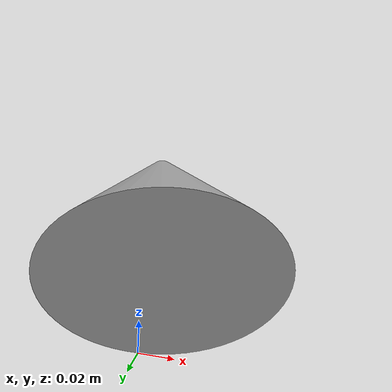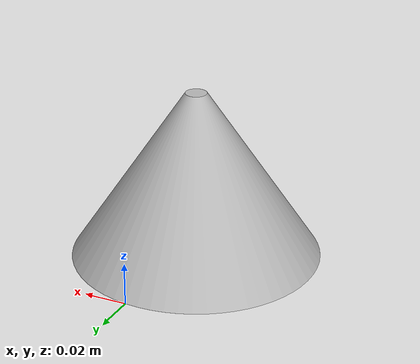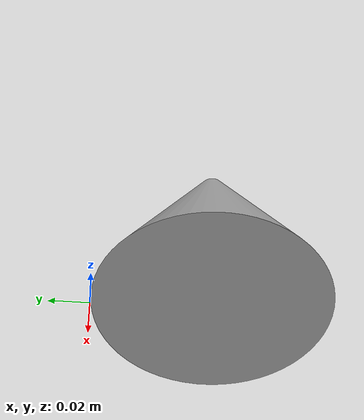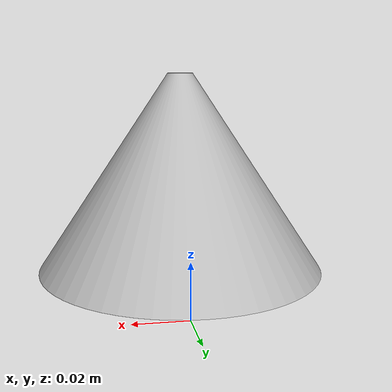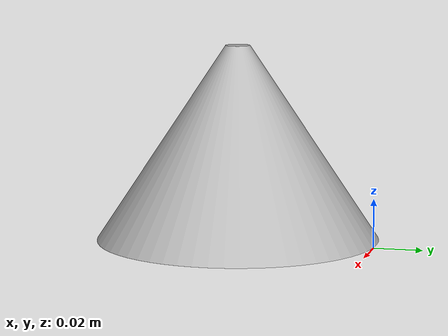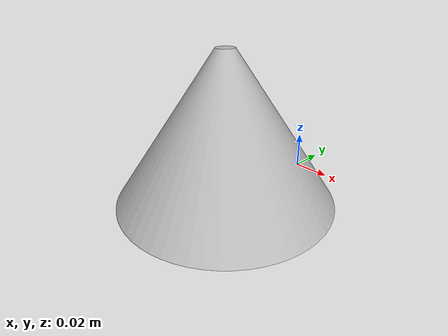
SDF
<?xml version="1.0" ?>
<sdf version="1.5">
  <model name="om">
    <static>true</static>
    <link name="link">
      <pose>-0.064 -0 0  1.570796  0 0</pose>
      <collision name="collision">
        <geometry>
          <mesh>
            <uri>/home/well/graspit/models/objects/test2_model/2.stl</uri>
            <scale>0.001 0.001 0.001</scale>
          </mesh>
        </geometry>
      </collision>
      <visual name="visual">
        <geometry>
          <mesh>
            <uri>/home/well/graspit/models/objects/test2_model/2.stl</uri>
            <scale>0.001 0.001 0.001</scale>
          </mesh>
        </geometry>
      </visual>
    </link>
  </model>
</sdf>
